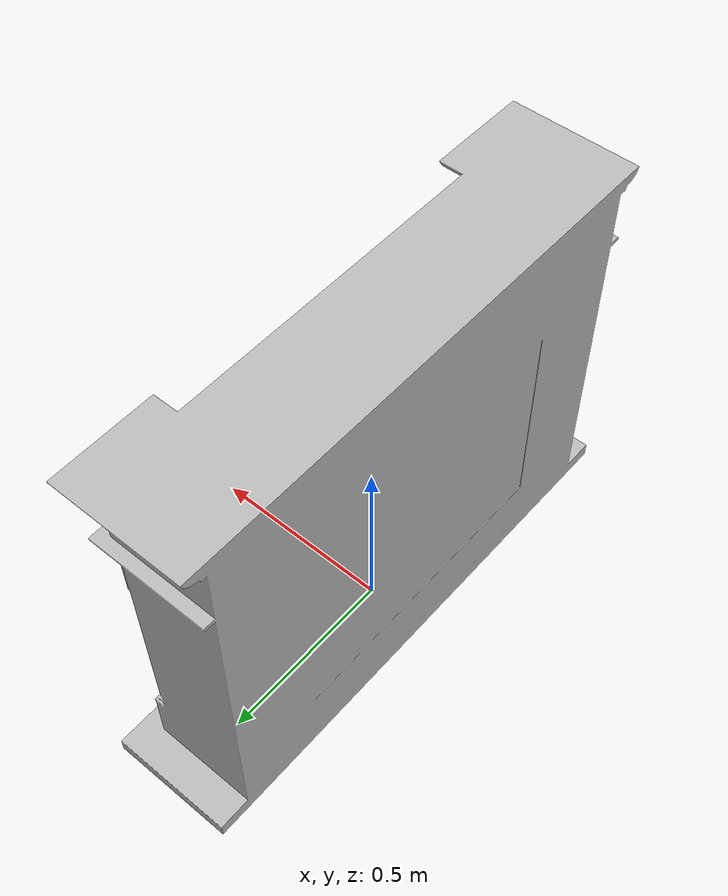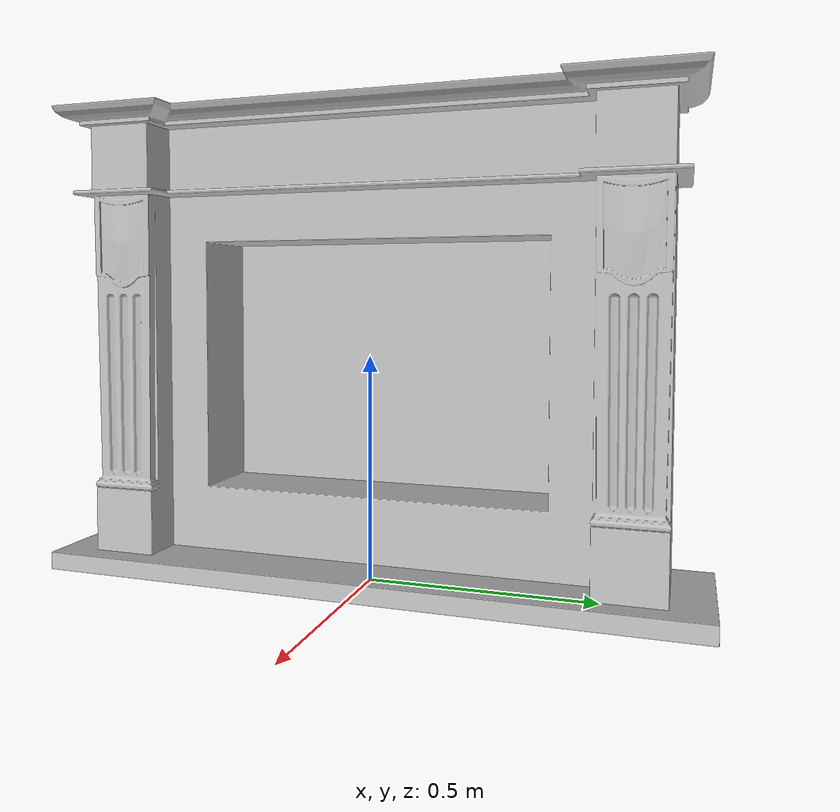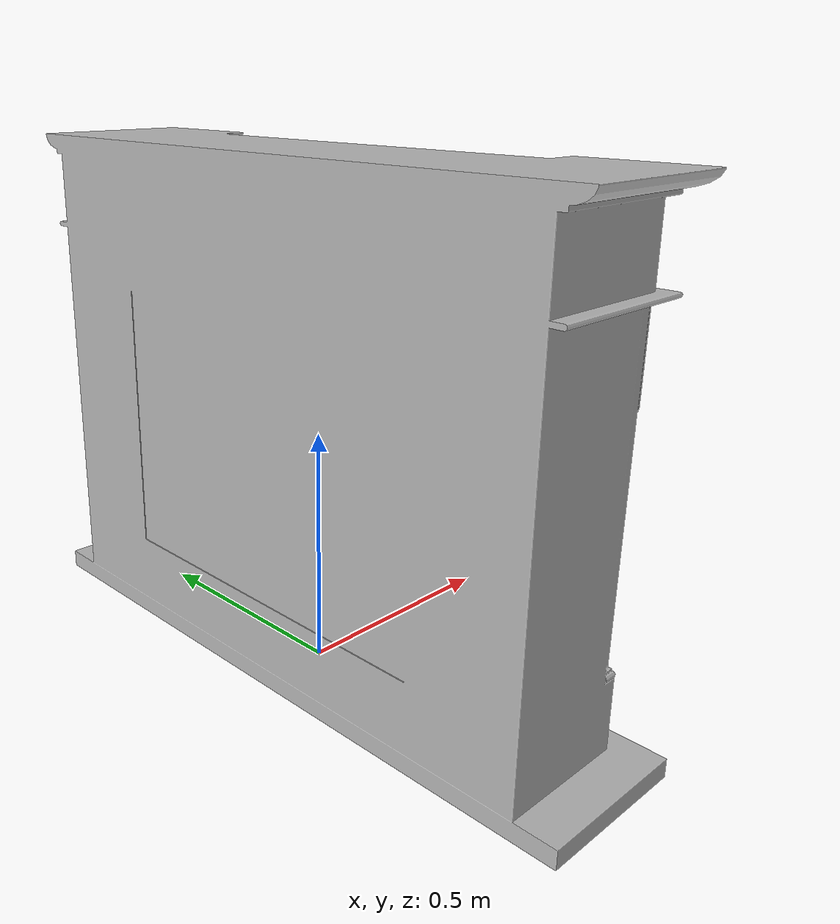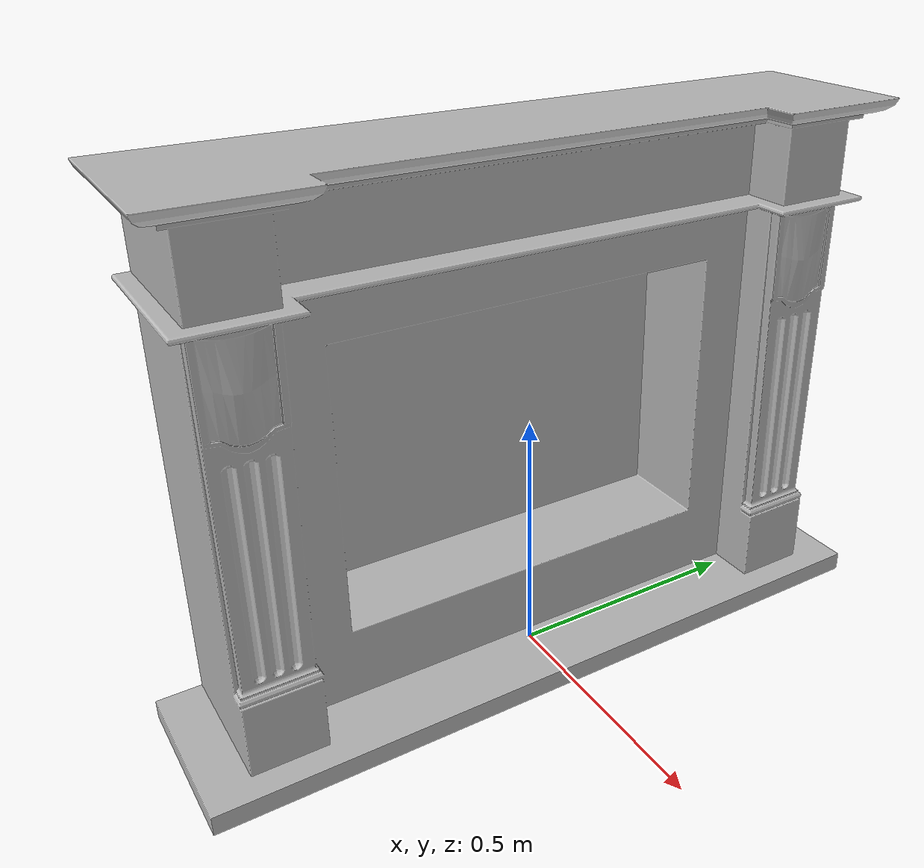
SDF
<?xml version='1.0'?>
<sdf version='1.4'>
  <model name='519'>
    <pose>0 0 0 0 0 0</pose>
    <static>true</static>
    <link name='link'>
      <collision name='collision'>
        <pose>0 0 0 0 0 0</pose>
        <geometry>
          <box>
            <size>0.34 1.45 2</size>
          </box>
        </geometry>
      </collision>
      <visual name='visual'>
        <pose>0 0 0 0 0 0</pose>
        <geometry>
          <mesh><uri>model://519/519.dae</uri></mesh>
        </geometry>
      </visual>
    </link>
  </model>
</sdf>
